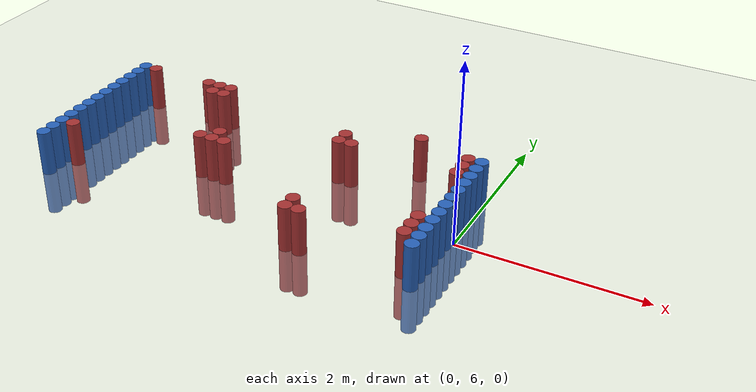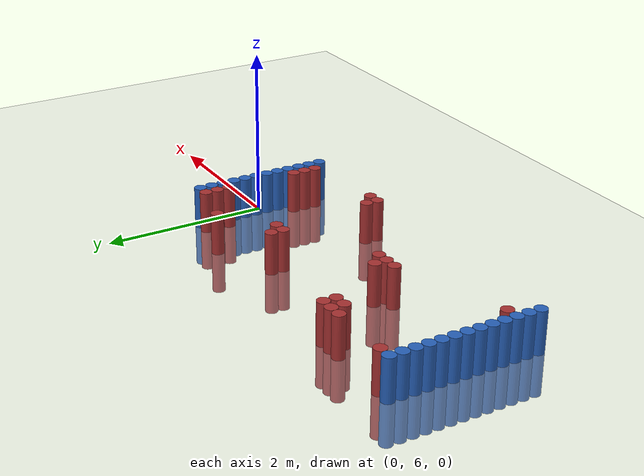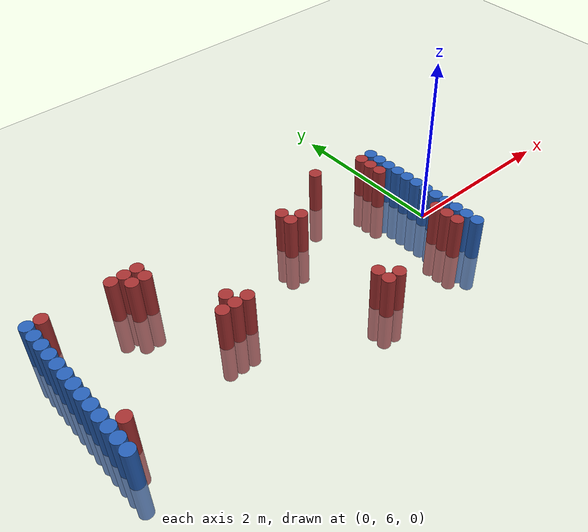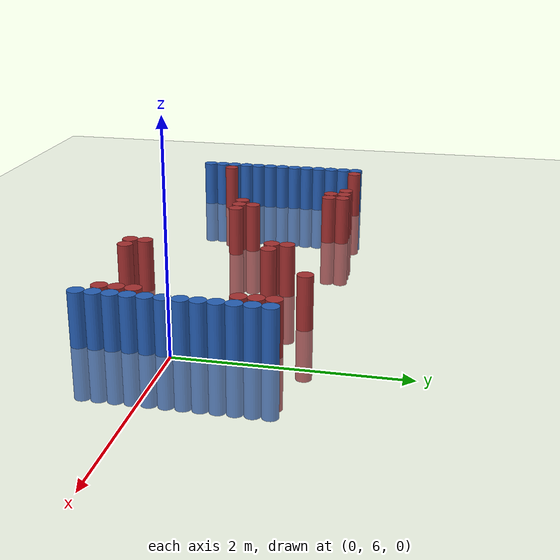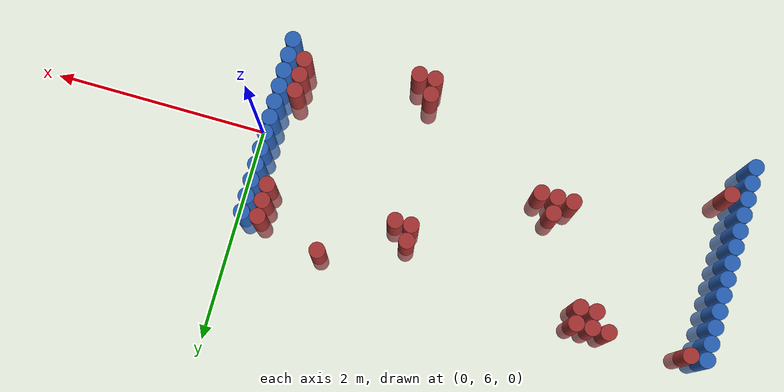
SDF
<sdf version="1.6">
 <world name="default">
  <model name="ground_plane">
   <static>1</static>
   <link name="link">
    <collision name="collision">
     <geometry><plane><normal>0 0 1</normal><size>100 100</size></plane></geometry>
     <surface><friction><ode><mu>100</mu><mu2>50</mu2></ode></friction></surface>
    </collision>
    <visual name="visual">
     <cast_shadows>0</cast_shadows>
     <geometry><plane><normal>0 0 1</normal><size>100 100</size></plane></geometry>
     <material>
      <script><uri>file://media/materials/scripts/gazebo.material</uri><name>Gazebo/Grey</name></script>
     </material>
    </visual>
   </link>
  </model>
  <model name="unit_cylinder_96">
   <static>1</static>
   <pose>-4.425000 5.175000 0.000000 0.000000 0.000000 0.000000</pose>
   <link name="link">
    <inertial>
     <mass>1</mass>
     <inertia><ixx>0.145833</ixx><ixy>0</ixy><ixz>0</ixz><iyy>0.145833</iyy><iyz>0</iyz><izz>0.125</izz></inertia>
    </inertial>
    <collision name="collision">
     <geometry><cylinder><radius>0.075000</radius><length>1</length></cylinder></geometry>
    </collision>
    <visual name="visual">
     <geometry><cylinder><radius>0.075000</radius><length>1</length></cylinder></geometry>
     <material>
      <ambient>0.152000 0.379000 0.720000 1</ambient>
      <diffuse>0.152000 0.379000 0.720000 1</diffuse>
     </material>
     <material>
      <script><name>Gazebo/Grey</name><uri>file://media/materials/scripts/gazebo.material</uri></script>
     </material>
    </visual>
   </link>
  </model>
  <model name="unit_cylinder_97">
   <static>1</static>
   <pose>-4.425000 5.325000 0.000000 0.000000 0.000000 0.000000</pose>
   <link name="link">
    <inertial>
     <mass>1</mass>
     <inertia><ixx>0.145833</ixx><ixy>0</ixy><ixz>0</ixz><iyy>0.145833</iyy><iyz>0</iyz><izz>0.125</izz></inertia>
    </inertial>
    <collision name="collision">
     <geometry><cylinder><radius>0.075000</radius><length>1</length></cylinder></geometry>
    </collision>
    <visual name="visual">
     <geometry><cylinder><radius>0.075000</radius><length>1</length></cylinder></geometry>
     <material>
      <ambient>0.152000 0.379000 0.720000 1</ambient>
      <diffuse>0.152000 0.379000 0.720000 1</diffuse>
     </material>
     <material>
      <script><name>Gazebo/Grey</name><uri>file://media/materials/scripts/gazebo.material</uri></script>
     </material>
    </visual>
   </link>
  </model>
  <model name="unit_cylinder_98">
   <static>1</static>
   <pose>-4.425000 5.475000 0.000000 0.000000 0.000000 0.000000</pose>
   <link name="link">
    <inertial>
     <mass>1</mass>
     <inertia><ixx>0.145833</ixx><ixy>0</ixy><ixz>0</ixz><iyy>0.145833</iyy><iyz>0</iyz><izz>0.125</izz></inertia>
    </inertial>
    <collision name="collision">
     <geometry><cylinder><radius>0.075000</radius><length>1</length></cylinder></geometry>
    </collision>
    <visual name="visual">
     <geometry><cylinder><radius>0.075000</radius><length>1</length></cylinder></geometry>
     <material>
      <ambient>0.152000 0.379000 0.720000 1</ambient>
      <diffuse>0.152000 0.379000 0.720000 1</diffuse>
     </material>
     <material>
      <script><name>Gazebo/Grey</name><uri>file://media/materials/scripts/gazebo.material</uri></script>
     </material>
    </visual>
   </link>
  </model>
  <model name="unit_cylinder_99">
   <static>1</static>
   <pose>-4.425000 5.625000 0.000000 0.000000 0.000000 0.000000</pose>
   <link name="link">
    <inertial>
     <mass>1</mass>
     <inertia><ixx>0.145833</ixx><ixy>0</ixy><ixz>0</ixz><iyy>0.145833</iyy><iyz>0</iyz><izz>0.125</izz></inertia>
    </inertial>
    <collision name="collision">
     <geometry><cylinder><radius>0.075000</radius><length>1</length></cylinder></geometry>
    </collision>
    <visual name="visual">
     <geometry><cylinder><radius>0.075000</radius><length>1</length></cylinder></geometry>
     <material>
      <ambient>0.152000 0.379000 0.720000 1</ambient>
      <diffuse>0.152000 0.379000 0.720000 1</diffuse>
     </material>
     <material>
      <script><name>Gazebo/Grey</name><uri>file://media/materials/scripts/gazebo.material</uri></script>
     </material>
    </visual>
   </link>
  </model>
  <model name="unit_cylinder_100">
   <static>1</static>
   <pose>-4.425000 5.775000 0.000000 0.000000 0.000000 0.000000</pose>
   <link name="link">
    <inertial>
     <mass>1</mass>
     <inertia><ixx>0.145833</ixx><ixy>0</ixy><ixz>0</ixz><iyy>0.145833</iyy><iyz>0</iyz><izz>0.125</izz></inertia>
    </inertial>
    <collision name="collision">
     <geometry><cylinder><radius>0.075000</radius><length>1</length></cylinder></geometry>
    </collision>
    <visual name="visual">
     <geometry><cylinder><radius>0.075000</radius><length>1</length></cylinder></geometry>
     <material>
      <ambient>0.152000 0.379000 0.720000 1</ambient>
      <diffuse>0.152000 0.379000 0.720000 1</diffuse>
     </material>
     <material>
      <script><name>Gazebo/Grey</name><uri>file://media/materials/scripts/gazebo.material</uri></script>
     </material>
    </visual>
   </link>
  </model>
  <model name="unit_cylinder_101">
   <static>1</static>
   <pose>-4.425000 5.925000 0.000000 0.000000 0.000000 0.000000</pose>
   <link name="link">
    <inertial>
     <mass>1</mass>
     <inertia><ixx>0.145833</ixx><ixy>0</ixy><ixz>0</ixz><iyy>0.145833</iyy><iyz>0</iyz><izz>0.125</izz></inertia>
    </inertial>
    <collision name="collision">
     <geometry><cylinder><radius>0.075000</radius><length>1</length></cylinder></geometry>
    </collision>
    <visual name="visual">
     <geometry><cylinder><radius>0.075000</radius><length>1</length></cylinder></geometry>
     <material>
      <ambient>0.152000 0.379000 0.720000 1</ambient>
      <diffuse>0.152000 0.379000 0.720000 1</diffuse>
     </material>
     <material>
      <script><name>Gazebo/Grey</name><uri>file://media/materials/scripts/gazebo.material</uri></script>
     </material>
    </visual>
   </link>
  </model>
  <model name="unit_cylinder_102">
   <static>1</static>
   <pose>-4.425000 6.075000 0.000000 0.000000 0.000000 0.000000</pose>
   <link name="link">
    <inertial>
     <mass>1</mass>
     <inertia><ixx>0.145833</ixx><ixy>0</ixy><ixz>0</ixz><iyy>0.145833</iyy><iyz>0</iyz><izz>0.125</izz></inertia>
    </inertial>
    <collision name="collision">
     <geometry><cylinder><radius>0.075000</radius><length>1</length></cylinder></geometry>
    </collision>
    <visual name="visual">
     <geometry><cylinder><radius>0.075000</radius><length>1</length></cylinder></geometry>
     <material>
      <ambient>0.152000 0.379000 0.720000 1</ambient>
      <diffuse>0.152000 0.379000 0.720000 1</diffuse>
     </material>
     <material>
      <script><name>Gazebo/Grey</name><uri>file://media/materials/scripts/gazebo.material</uri></script>
     </material>
    </visual>
   </link>
  </model>
  <model name="unit_cylinder_103">
   <static>1</static>
   <pose>-4.425000 6.225000 0.000000 0.000000 0.000000 0.000000</pose>
   <link name="link">
    <inertial>
     <mass>1</mass>
     <inertia><ixx>0.145833</ixx><ixy>0</ixy><ixz>0</ixz><iyy>0.145833</iyy><iyz>0</iyz><izz>0.125</izz></inertia>
    </inertial>
    <collision name="collision">
     <geometry><cylinder><radius>0.075000</radius><length>1</length></cylinder></geometry>
    </collision>
    <visual name="visual">
     <geometry><cylinder><radius>0.075000</radius><length>1</length></cylinder></geometry>
     <material>
      <ambient>0.152000 0.379000 0.720000 1</ambient>
      <diffuse>0.152000 0.379000 0.720000 1</diffuse>
     </material>
     <material>
      <script><name>Gazebo/Grey</name><uri>file://media/materials/scripts/gazebo.material</uri></script>
     </material>
    </visual>
   </link>
  </model>
  <model name="unit_cylinder_104">
   <static>1</static>
   <pose>-4.425000 6.375000 0.000000 0.000000 0.000000 0.000000</pose>
   <link name="link">
    <inertial>
     <mass>1</mass>
     <inertia><ixx>0.145833</ixx><ixy>0</ixy><ixz>0</ixz><iyy>0.145833</iyy><iyz>0</iyz><izz>0.125</izz></inertia>
    </inertial>
    <collision name="collision">
     <geometry><cylinder><radius>0.075000</radius><length>1</length></cylinder></geometry>
    </collision>
    <visual name="visual">
     <geometry><cylinder><radius>0.075000</radius><length>1</length></cylinder></geometry>
     <material>
      <ambient>0.152000 0.379000 0.720000 1</ambient>
      <diffuse>0.152000 0.379000 0.720000 1</diffuse>
     </material>
     <material>
      <script><name>Gazebo/Grey</name><uri>file://media/materials/scripts/gazebo.material</uri></script>
     </material>
    </visual>
   </link>
  </model>
  <model name="unit_cylinder_105">
   <static>1</static>
   <pose>-4.425000 6.525000 0.000000 0.000000 0.000000 0.000000</pose>
   <link name="link">
    <inertial>
     <mass>1</mass>
     <inertia><ixx>0.145833</ixx><ixy>0</ixy><ixz>0</ixz><iyy>0.145833</iyy><iyz>0</iyz><izz>0.125</izz></inertia>
    </inertial>
    <collision name="collision">
     <geometry><cylinder><radius>0.075000</radius><length>1</length></cylinder></geometry>
    </collision>
    <visual name="visual">
     <geometry><cylinder><radius>0.075000</radius><length>1</length></cylinder></geometry>
     <material>
      <ambient>0.152000 0.379000 0.720000 1</ambient>
      <diffuse>0.152000 0.379000 0.720000 1</diffuse>
     </material>
     <material>
      <script><name>Gazebo/Grey</name><uri>file://media/materials/scripts/gazebo.material</uri></script>
     </material>
    </visual>
   </link>
  </model>
  <model name="unit_cylinder_106">
   <static>1</static>
   <pose>-4.425000 6.675000 0.000000 0.000000 0.000000 0.000000</pose>
   <link name="link">
    <inertial>
     <mass>1</mass>
     <inertia><ixx>0.145833</ixx><ixy>0</ixy><ixz>0</ixz><iyy>0.145833</iyy><iyz>0</iyz><izz>0.125</izz></inertia>
    </inertial>
    <collision name="collision">
     <geometry><cylinder><radius>0.075000</radius><length>1</length></cylinder></geometry>
    </collision>
    <visual name="visual">
     <geometry><cylinder><radius>0.075000</radius><length>1</length></cylinder></geometry>
     <material>
      <ambient>0.152000 0.379000 0.720000 1</ambient>
      <diffuse>0.152000 0.379000 0.720000 1</diffuse>
     </material>
     <material>
      <script><name>Gazebo/Grey</name><uri>file://media/materials/scripts/gazebo.material</uri></script>
     </material>
    </visual>
   </link>
  </model>
  <model name="unit_cylinder_107">
   <static>1</static>
   <pose>-4.425000 6.825000 0.000000 0.000000 0.000000 0.000000</pose>
   <link name="link">
    <inertial>
     <mass>1</mass>
     <inertia><ixx>0.145833</ixx><ixy>0</ixy><ixz>0</ixz><iyy>0.145833</iyy><iyz>0</iyz><izz>0.125</izz></inertia>
    </inertial>
    <collision name="collision">
     <geometry><cylinder><radius>0.075000</radius><length>1</length></cylinder></geometry>
    </collision>
    <visual name="visual">
     <geometry><cylinder><radius>0.075000</radius><length>1</length></cylinder></geometry>
     <material>
      <ambient>0.152000 0.379000 0.720000 1</ambient>
      <diffuse>0.152000 0.379000 0.720000 1</diffuse>
     </material>
     <material>
      <script><name>Gazebo/Grey</name><uri>file://media/materials/scripts/gazebo.material</uri></script>
     </material>
    </visual>
   </link>
  </model>
  <model name="unit_cylinder_108">
   <static>1</static>
   <pose>-4.425000 6.975000 0.000000 0.000000 0.000000 0.000000</pose>
   <link name="link">
    <inertial>
     <mass>1</mass>
     <inertia><ixx>0.145833</ixx><ixy>0</ixy><ixz>0</ixz><iyy>0.145833</iyy><iyz>0</iyz><izz>0.125</izz></inertia>
    </inertial>
    <collision name="collision">
     <geometry><cylinder><radius>0.075000</radius><length>1</length></cylinder></geometry>
    </collision>
    <visual name="visual">
     <geometry><cylinder><radius>0.075000</radius><length>1</length></cylinder></geometry>
     <material>
      <ambient>0.152000 0.379000 0.720000 1</ambient>
      <diffuse>0.152000 0.379000 0.720000 1</diffuse>
     </material>
     <material>
      <script><name>Gazebo/Grey</name><uri>file://media/materials/scripts/gazebo.material</uri></script>
     </material>
    </visual>
   </link>
  </model>
  <model name="unit_cylinder_126">
   <static>1</static>
   <pose>-4.275000 5.475000 0.000000 0.000000 0.000000 0.000000</pose>
   <link name="link">
    <inertial>
     <mass>1</mass>
     <inertia><ixx>0.145833</ixx><ixy>0</ixy><ixz>0</ixz><iyy>0.145833</iyy><iyz>0</iyz><izz>0.125</izz></inertia>
    </inertial>
    <collision name="collision">
     <geometry><cylinder><radius>0.075000</radius><length>1</length></cylinder></geometry>
    </collision>
    <visual name="visual">
     <geometry><cylinder><radius>0.075000</radius><length>1</length></cylinder></geometry>
     <material>
      <ambient>0.648000 0.192000 0.192000 1</ambient>
      <diffuse>0.648000 0.192000 0.192000 1</diffuse>
     </material>
     <material>
      <script><name>Gazebo/Grey</name><uri>file://media/materials/scripts/gazebo.material</uri></script>
     </material>
    </visual>
   </link>
  </model>
  <model name="unit_cylinder_127">
   <static>1</static>
   <pose>-4.275000 6.975000 0.000000 0.000000 0.000000 0.000000</pose>
   <link name="link">
    <inertial>
     <mass>1</mass>
     <inertia><ixx>0.145833</ixx><ixy>0</ixy><ixz>0</ixz><iyy>0.145833</iyy><iyz>0</iyz><izz>0.125</izz></inertia>
    </inertial>
    <collision name="collision">
     <geometry><cylinder><radius>0.075000</radius><length>1</length></cylinder></geometry>
    </collision>
    <visual name="visual">
     <geometry><cylinder><radius>0.075000</radius><length>1</length></cylinder></geometry>
     <material>
      <ambient>0.648000 0.192000 0.192000 1</ambient>
      <diffuse>0.648000 0.192000 0.192000 1</diffuse>
     </material>
     <material>
      <script><name>Gazebo/Grey</name><uri>file://media/materials/scripts/gazebo.material</uri></script>
     </material>
    </visual>
   </link>
  </model>
  <model name="unit_cylinder_147">
   <static>1</static>
   <pose>-3.525000 6.975000 0.000000 0.000000 0.000000 0.000000</pose>
   <link name="link">
    <inertial>
     <mass>1</mass>
     <inertia><ixx>0.145833</ixx><ixy>0</ixy><ixz>0</ixz><iyy>0.145833</iyy><iyz>0</iyz><izz>0.125</izz></inertia>
    </inertial>
    <collision name="collision">
     <geometry><cylinder><radius>0.075000</radius><length>1</length></cylinder></geometry>
    </collision>
    <visual name="visual">
     <geometry><cylinder><radius>0.075000</radius><length>1</length></cylinder></geometry>
     <material>
      <ambient>0.648000 0.192000 0.192000 1</ambient>
      <diffuse>0.648000 0.192000 0.192000 1</diffuse>
     </material>
     <material>
      <script><name>Gazebo/Grey</name><uri>file://media/materials/scripts/gazebo.material</uri></script>
     </material>
    </visual>
   </link>
  </model>
  <model name="unit_cylinder_149">
   <static>1</static>
   <pose>-3.375000 6.825000 0.000000 0.000000 0.000000 0.000000</pose>
   <link name="link">
    <inertial>
     <mass>1</mass>
     <inertia><ixx>0.145833</ixx><ixy>0</ixy><ixz>0</ixz><iyy>0.145833</iyy><iyz>0</iyz><izz>0.125</izz></inertia>
    </inertial>
    <collision name="collision">
     <geometry><cylinder><radius>0.075000</radius><length>1</length></cylinder></geometry>
    </collision>
    <visual name="visual">
     <geometry><cylinder><radius>0.075000</radius><length>1</length></cylinder></geometry>
     <material>
      <ambient>0.648000 0.192000 0.192000 1</ambient>
      <diffuse>0.648000 0.192000 0.192000 1</diffuse>
     </material>
     <material>
      <script><name>Gazebo/Grey</name><uri>file://media/materials/scripts/gazebo.material</uri></script>
     </material>
    </visual>
   </link>
  </model>
  <model name="unit_cylinder_150">
   <static>1</static>
   <pose>-3.375000 6.975000 0.000000 0.000000 0.000000 0.000000</pose>
   <link name="link">
    <inertial>
     <mass>1</mass>
     <inertia><ixx>0.145833</ixx><ixy>0</ixy><ixz>0</ixz><iyy>0.145833</iyy><iyz>0</iyz><izz>0.125</izz></inertia>
    </inertial>
    <collision name="collision">
     <geometry><cylinder><radius>0.075000</radius><length>1</length></cylinder></geometry>
    </collision>
    <visual name="visual">
     <geometry><cylinder><radius>0.075000</radius><length>1</length></cylinder></geometry>
     <material>
      <ambient>0.648000 0.192000 0.192000 1</ambient>
      <diffuse>0.648000 0.192000 0.192000 1</diffuse>
     </material>
     <material>
      <script><name>Gazebo/Grey</name><uri>file://media/materials/scripts/gazebo.material</uri></script>
     </material>
    </visual>
   </link>
  </model>
  <model name="unit_cylinder_152">
   <static>1</static>
   <pose>-3.225000 6.825000 0.000000 0.000000 0.000000 0.000000</pose>
   <link name="link">
    <inertial>
     <mass>1</mass>
     <inertia><ixx>0.145833</ixx><ixy>0</ixy><ixz>0</ixz><iyy>0.145833</iyy><iyz>0</iyz><izz>0.125</izz></inertia>
    </inertial>
    <collision name="collision">
     <geometry><cylinder><radius>0.075000</radius><length>1</length></cylinder></geometry>
    </collision>
    <visual name="visual">
     <geometry><cylinder><radius>0.075000</radius><length>1</length></cylinder></geometry>
     <material>
      <ambient>0.648000 0.192000 0.192000 1</ambient>
      <diffuse>0.648000 0.192000 0.192000 1</diffuse>
     </material>
     <material>
      <script><name>Gazebo/Grey</name><uri>file://media/materials/scripts/gazebo.material</uri></script>
     </material>
    </visual>
   </link>
  </model>
  <model name="unit_cylinder_153">
   <static>1</static>
   <pose>-3.225000 6.975000 0.000000 0.000000 0.000000 0.000000</pose>
   <link name="link">
    <inertial>
     <mass>1</mass>
     <inertia><ixx>0.145833</ixx><ixy>0</ixy><ixz>0</ixz><iyy>0.145833</iyy><iyz>0</iyz><izz>0.125</izz></inertia>
    </inertial>
    <collision name="collision">
     <geometry><cylinder><radius>0.075000</radius><length>1</length></cylinder></geometry>
    </collision>
    <visual name="visual">
     <geometry><cylinder><radius>0.075000</radius><length>1</length></cylinder></geometry>
     <material>
      <ambient>0.648000 0.192000 0.192000 1</ambient>
      <diffuse>0.648000 0.192000 0.192000 1</diffuse>
     </material>
     <material>
      <script><name>Gazebo/Grey</name><uri>file://media/materials/scripts/gazebo.material</uri></script>
     </material>
    </visual>
   </link>
  </model>
  <model name="unit_cylinder_157">
   <static>1</static>
   <pose>-2.925000 5.925000 0.000000 0.000000 0.000000 0.000000</pose>
   <link name="link">
    <inertial>
     <mass>1</mass>
     <inertia><ixx>0.145833</ixx><ixy>0</ixy><ixz>0</ixz><iyy>0.145833</iyy><iyz>0</iyz><izz>0.125</izz></inertia>
    </inertial>
    <collision name="collision">
     <geometry><cylinder><radius>0.075000</radius><length>1</length></cylinder></geometry>
    </collision>
    <visual name="visual">
     <geometry><cylinder><radius>0.075000</radius><length>1</length></cylinder></geometry>
     <material>
      <ambient>0.648000 0.192000 0.192000 1</ambient>
      <diffuse>0.648000 0.192000 0.192000 1</diffuse>
     </material>
     <material>
      <script><name>Gazebo/Grey</name><uri>file://media/materials/scripts/gazebo.material</uri></script>
     </material>
    </visual>
   </link>
  </model>
  <model name="unit_cylinder_158">
   <static>1</static>
   <pose>-2.775000 5.925000 0.000000 0.000000 0.000000 0.000000</pose>
   <link name="link">
    <inertial>
     <mass>1</mass>
     <inertia><ixx>0.145833</ixx><ixy>0</ixy><ixz>0</ixz><iyy>0.145833</iyy><iyz>0</iyz><izz>0.125</izz></inertia>
    </inertial>
    <collision name="collision">
     <geometry><cylinder><radius>0.075000</radius><length>1</length></cylinder></geometry>
    </collision>
    <visual name="visual">
     <geometry><cylinder><radius>0.075000</radius><length>1</length></cylinder></geometry>
     <material>
      <ambient>0.648000 0.192000 0.192000 1</ambient>
      <diffuse>0.648000 0.192000 0.192000 1</diffuse>
     </material>
     <material>
      <script><name>Gazebo/Grey</name><uri>file://media/materials/scripts/gazebo.material</uri></script>
     </material>
    </visual>
   </link>
  </model>
  <model name="unit_cylinder_159">
   <static>1</static>
   <pose>-2.775000 6.075000 0.000000 0.000000 0.000000 0.000000</pose>
   <link name="link">
    <inertial>
     <mass>1</mass>
     <inertia><ixx>0.145833</ixx><ixy>0</ixy><ixz>0</ixz><iyy>0.145833</iyy><iyz>0</iyz><izz>0.125</izz></inertia>
    </inertial>
    <collision name="collision">
     <geometry><cylinder><radius>0.075000</radius><length>1</length></cylinder></geometry>
    </collision>
    <visual name="visual">
     <geometry><cylinder><radius>0.075000</radius><length>1</length></cylinder></geometry>
     <material>
      <ambient>0.648000 0.192000 0.192000 1</ambient>
      <diffuse>0.648000 0.192000 0.192000 1</diffuse>
     </material>
     <material>
      <script><name>Gazebo/Grey</name><uri>file://media/materials/scripts/gazebo.material</uri></script>
     </material>
    </visual>
   </link>
  </model>
  <model name="unit_cylinder_160">
   <static>1</static>
   <pose>-2.625000 5.925000 0.000000 0.000000 0.000000 0.000000</pose>
   <link name="link">
    <inertial>
     <mass>1</mass>
     <inertia><ixx>0.145833</ixx><ixy>0</ixy><ixz>0</ixz><iyy>0.145833</iyy><iyz>0</iyz><izz>0.125</izz></inertia>
    </inertial>
    <collision name="collision">
     <geometry><cylinder><radius>0.075000</radius><length>1</length></cylinder></geometry>
    </collision>
    <visual name="visual">
     <geometry><cylinder><radius>0.075000</radius><length>1</length></cylinder></geometry>
     <material>
      <ambient>0.648000 0.192000 0.192000 1</ambient>
      <diffuse>0.648000 0.192000 0.192000 1</diffuse>
     </material>
     <material>
      <script><name>Gazebo/Grey</name><uri>file://media/materials/scripts/gazebo.material</uri></script>
     </material>
    </visual>
   </link>
  </model>
  <model name="unit_cylinder_165">
   <static>1</static>
   <pose>-1.575000 6.525000 0.000000 0.000000 0.000000 0.000000</pose>
   <link name="link">
    <inertial>
     <mass>1</mass>
     <inertia><ixx>0.145833</ixx><ixy>0</ixy><ixz>0</ixz><iyy>0.145833</iyy><iyz>0</iyz><izz>0.125</izz></inertia>
    </inertial>
    <collision name="collision">
     <geometry><cylinder><radius>0.075000</radius><length>1</length></cylinder></geometry>
    </collision>
    <visual name="visual">
     <geometry><cylinder><radius>0.075000</radius><length>1</length></cylinder></geometry>
     <material>
      <ambient>0.648000 0.192000 0.192000 1</ambient>
      <diffuse>0.648000 0.192000 0.192000 1</diffuse>
     </material>
     <material>
      <script><name>Gazebo/Grey</name><uri>file://media/materials/scripts/gazebo.material</uri></script>
     </material>
    </visual>
   </link>
  </model>
  <model name="unit_cylinder_166">
   <static>1</static>
   <pose>-1.575000 6.675000 0.000000 0.000000 0.000000 0.000000</pose>
   <link name="link">
    <inertial>
     <mass>1</mass>
     <inertia><ixx>0.145833</ixx><ixy>0</ixy><ixz>0</ixz><iyy>0.145833</iyy><iyz>0</iyz><izz>0.125</izz></inertia>
    </inertial>
    <collision name="collision">
     <geometry><cylinder><radius>0.075000</radius><length>1</length></cylinder></geometry>
    </collision>
    <visual name="visual">
     <geometry><cylinder><radius>0.075000</radius><length>1</length></cylinder></geometry>
     <material>
      <ambient>0.648000 0.192000 0.192000 1</ambient>
      <diffuse>0.648000 0.192000 0.192000 1</diffuse>
     </material>
     <material>
      <script><name>Gazebo/Grey</name><uri>file://media/materials/scripts/gazebo.material</uri></script>
     </material>
    </visual>
   </link>
  </model>
  <model name="unit_cylinder_171">
   <static>1</static>
   <pose>-1.425000 5.175000 0.000000 0.000000 0.000000 0.000000</pose>
   <link name="link">
    <inertial>
     <mass>1</mass>
     <inertia><ixx>0.145833</ixx><ixy>0</ixy><ixz>0</ixz><iyy>0.145833</iyy><iyz>0</iyz><izz>0.125</izz></inertia>
    </inertial>
    <collision name="collision">
     <geometry><cylinder><radius>0.075000</radius><length>1</length></cylinder></geometry>
    </collision>
    <visual name="visual">
     <geometry><cylinder><radius>0.075000</radius><length>1</length></cylinder></geometry>
     <material>
      <ambient>0.648000 0.192000 0.192000 1</ambient>
      <diffuse>0.648000 0.192000 0.192000 1</diffuse>
     </material>
     <material>
      <script><name>Gazebo/Grey</name><uri>file://media/materials/scripts/gazebo.material</uri></script>
     </material>
    </visual>
   </link>
  </model>
  <model name="unit_cylinder_172">
   <static>1</static>
   <pose>-1.425000 5.325000 0.000000 0.000000 0.000000 0.000000</pose>
   <link name="link">
    <inertial>
     <mass>1</mass>
     <inertia><ixx>0.145833</ixx><ixy>0</ixy><ixz>0</ixz><iyy>0.145833</iyy><iyz>0</iyz><izz>0.125</izz></inertia>
    </inertial>
    <collision name="collision">
     <geometry><cylinder><radius>0.075000</radius><length>1</length></cylinder></geometry>
    </collision>
    <visual name="visual">
     <geometry><cylinder><radius>0.075000</radius><length>1</length></cylinder></geometry>
     <material>
      <ambient>0.648000 0.192000 0.192000 1</ambient>
      <diffuse>0.648000 0.192000 0.192000 1</diffuse>
     </material>
     <material>
      <script><name>Gazebo/Grey</name><uri>file://media/materials/scripts/gazebo.material</uri></script>
     </material>
    </visual>
   </link>
  </model>
  <model name="unit_cylinder_173">
   <static>1</static>
   <pose>-1.425000 6.525000 0.000000 0.000000 0.000000 0.000000</pose>
   <link name="link">
    <inertial>
     <mass>1</mass>
     <inertia><ixx>0.145833</ixx><ixy>0</ixy><ixz>0</ixz><iyy>0.145833</iyy><iyz>0</iyz><izz>0.125</izz></inertia>
    </inertial>
    <collision name="collision">
     <geometry><cylinder><radius>0.075000</radius><length>1</length></cylinder></geometry>
    </collision>
    <visual name="visual">
     <geometry><cylinder><radius>0.075000</radius><length>1</length></cylinder></geometry>
     <material>
      <ambient>0.648000 0.192000 0.192000 1</ambient>
      <diffuse>0.648000 0.192000 0.192000 1</diffuse>
     </material>
     <material>
      <script><name>Gazebo/Grey</name><uri>file://media/materials/scripts/gazebo.material</uri></script>
     </material>
    </visual>
   </link>
  </model>
  <model name="unit_cylinder_179">
   <static>1</static>
   <pose>-1.275000 5.175000 0.000000 0.000000 0.000000 0.000000</pose>
   <link name="link">
    <inertial>
     <mass>1</mass>
     <inertia><ixx>0.145833</ixx><ixy>0</ixy><ixz>0</ixz><iyy>0.145833</iyy><iyz>0</iyz><izz>0.125</izz></inertia>
    </inertial>
    <collision name="collision">
     <geometry><cylinder><radius>0.075000</radius><length>1</length></cylinder></geometry>
    </collision>
    <visual name="visual">
     <geometry><cylinder><radius>0.075000</radius><length>1</length></cylinder></geometry>
     <material>
      <ambient>0.648000 0.192000 0.192000 1</ambient>
      <diffuse>0.648000 0.192000 0.192000 1</diffuse>
     </material>
     <material>
      <script><name>Gazebo/Grey</name><uri>file://media/materials/scripts/gazebo.material</uri></script>
     </material>
    </visual>
   </link>
  </model>
  <model name="unit_cylinder_187">
   <static>1</static>
   <pose>-0.825000 6.975000 0.000000 0.000000 0.000000 0.000000</pose>
   <link name="link">
    <inertial>
     <mass>1</mass>
     <inertia><ixx>0.145833</ixx><ixy>0</ixy><ixz>0</ixz><iyy>0.145833</iyy><iyz>0</iyz><izz>0.125</izz></inertia>
    </inertial>
    <collision name="collision">
     <geometry><cylinder><radius>0.075000</radius><length>1</length></cylinder></geometry>
    </collision>
    <visual name="visual">
     <geometry><cylinder><radius>0.075000</radius><length>1</length></cylinder></geometry>
     <material>
      <ambient>0.648000 0.192000 0.192000 1</ambient>
      <diffuse>0.648000 0.192000 0.192000 1</diffuse>
     </material>
     <material>
      <script><name>Gazebo/Grey</name><uri>file://media/materials/scripts/gazebo.material</uri></script>
     </material>
    </visual>
   </link>
  </model>
  <model name="unit_cylinder_202">
   <static>1</static>
   <pose>-0.225000 5.325000 0.000000 0.000000 0.000000 0.000000</pose>
   <link name="link">
    <inertial>
     <mass>1</mass>
     <inertia><ixx>0.145833</ixx><ixy>0</ixy><ixz>0</ixz><iyy>0.145833</iyy><iyz>0</iyz><izz>0.125</izz></inertia>
    </inertial>
    <collision name="collision">
     <geometry><cylinder><radius>0.075000</radius><length>1</length></cylinder></geometry>
    </collision>
    <visual name="visual">
     <geometry><cylinder><radius>0.075000</radius><length>1</length></cylinder></geometry>
     <material>
      <ambient>0.648000 0.192000 0.192000 1</ambient>
      <diffuse>0.648000 0.192000 0.192000 1</diffuse>
     </material>
     <material>
      <script><name>Gazebo/Grey</name><uri>file://media/materials/scripts/gazebo.material</uri></script>
     </material>
    </visual>
   </link>
  </model>
  <model name="unit_cylinder_203">
   <static>1</static>
   <pose>-0.225000 5.475000 0.000000 0.000000 0.000000 0.000000</pose>
   <link name="link">
    <inertial>
     <mass>1</mass>
     <inertia><ixx>0.145833</ixx><ixy>0</ixy><ixz>0</ixz><iyy>0.145833</iyy><iyz>0</iyz><izz>0.125</izz></inertia>
    </inertial>
    <collision name="collision">
     <geometry><cylinder><radius>0.075000</radius><length>1</length></cylinder></geometry>
    </collision>
    <visual name="visual">
     <geometry><cylinder><radius>0.075000</radius><length>1</length></cylinder></geometry>
     <material>
      <ambient>0.648000 0.192000 0.192000 1</ambient>
      <diffuse>0.648000 0.192000 0.192000 1</diffuse>
     </material>
     <material>
      <script><name>Gazebo/Grey</name><uri>file://media/materials/scripts/gazebo.material</uri></script>
     </material>
    </visual>
   </link>
  </model>
  <model name="unit_cylinder_204">
   <static>1</static>
   <pose>-0.225000 5.625000 0.000000 0.000000 0.000000 0.000000</pose>
   <link name="link">
    <inertial>
     <mass>1</mass>
     <inertia><ixx>0.145833</ixx><ixy>0</ixy><ixz>0</ixz><iyy>0.145833</iyy><iyz>0</iyz><izz>0.125</izz></inertia>
    </inertial>
    <collision name="collision">
     <geometry><cylinder><radius>0.075000</radius><length>1</length></cylinder></geometry>
    </collision>
    <visual name="visual">
     <geometry><cylinder><radius>0.075000</radius><length>1</length></cylinder></geometry>
     <material>
      <ambient>0.648000 0.192000 0.192000 1</ambient>
      <diffuse>0.648000 0.192000 0.192000 1</diffuse>
     </material>
     <material>
      <script><name>Gazebo/Grey</name><uri>file://media/materials/scripts/gazebo.material</uri></script>
     </material>
    </visual>
   </link>
  </model>
  <model name="unit_cylinder_205">
   <static>1</static>
   <pose>-0.225000 6.525000 0.000000 0.000000 0.000000 0.000000</pose>
   <link name="link">
    <inertial>
     <mass>1</mass>
     <inertia><ixx>0.145833</ixx><ixy>0</ixy><ixz>0</ixz><iyy>0.145833</iyy><iyz>0</iyz><izz>0.125</izz></inertia>
    </inertial>
    <collision name="collision">
     <geometry><cylinder><radius>0.075000</radius><length>1</length></cylinder></geometry>
    </collision>
    <visual name="visual">
     <geometry><cylinder><radius>0.075000</radius><length>1</length></cylinder></geometry>
     <material>
      <ambient>0.648000 0.192000 0.192000 1</ambient>
      <diffuse>0.648000 0.192000 0.192000 1</diffuse>
     </material>
     <material>
      <script><name>Gazebo/Grey</name><uri>file://media/materials/scripts/gazebo.material</uri></script>
     </material>
    </visual>
   </link>
  </model>
  <model name="unit_cylinder_206">
   <static>1</static>
   <pose>-0.225000 6.675000 0.000000 0.000000 0.000000 0.000000</pose>
   <link name="link">
    <inertial>
     <mass>1</mass>
     <inertia><ixx>0.145833</ixx><ixy>0</ixy><ixz>0</ixz><iyy>0.145833</iyy><iyz>0</iyz><izz>0.125</izz></inertia>
    </inertial>
    <collision name="collision">
     <geometry><cylinder><radius>0.075000</radius><length>1</length></cylinder></geometry>
    </collision>
    <visual name="visual">
     <geometry><cylinder><radius>0.075000</radius><length>1</length></cylinder></geometry>
     <material>
      <ambient>0.648000 0.192000 0.192000 1</ambient>
      <diffuse>0.648000 0.192000 0.192000 1</diffuse>
     </material>
     <material>
      <script><name>Gazebo/Grey</name><uri>file://media/materials/scripts/gazebo.material</uri></script>
     </material>
    </visual>
   </link>
  </model>
  <model name="unit_cylinder_207">
   <static>1</static>
   <pose>-0.225000 6.825000 0.000000 0.000000 0.000000 0.000000</pose>
   <link name="link">
    <inertial>
     <mass>1</mass>
     <inertia><ixx>0.145833</ixx><ixy>0</ixy><ixz>0</ixz><iyy>0.145833</iyy><iyz>0</iyz><izz>0.125</izz></inertia>
    </inertial>
    <collision name="collision">
     <geometry><cylinder><radius>0.075000</radius><length>1</length></cylinder></geometry>
    </collision>
    <visual name="visual">
     <geometry><cylinder><radius>0.075000</radius><length>1</length></cylinder></geometry>
     <material>
      <ambient>0.648000 0.192000 0.192000 1</ambient>
      <diffuse>0.648000 0.192000 0.192000 1</diffuse>
     </material>
     <material>
      <script><name>Gazebo/Grey</name><uri>file://media/materials/scripts/gazebo.material</uri></script>
     </material>
    </visual>
   </link>
  </model>
  <model name="unit_cylinder_212">
   <static>1</static>
   <pose>-0.075000 5.175000 0.000000 0.000000 0.000000 0.000000</pose>
   <link name="link">
    <inertial>
     <mass>1</mass>
     <inertia><ixx>0.145833</ixx><ixy>0</ixy><ixz>0</ixz><iyy>0.145833</iyy><iyz>0</iyz><izz>0.125</izz></inertia>
    </inertial>
    <collision name="collision">
     <geometry><cylinder><radius>0.075000</radius><length>1</length></cylinder></geometry>
    </collision>
    <visual name="visual">
     <geometry><cylinder><radius>0.075000</radius><length>1</length></cylinder></geometry>
     <material>
      <ambient>0.152000 0.379000 0.720000 1</ambient>
      <diffuse>0.152000 0.379000 0.720000 1</diffuse>
     </material>
     <material>
      <script><name>Gazebo/Grey</name><uri>file://media/materials/scripts/gazebo.material</uri></script>
     </material>
    </visual>
   </link>
  </model>
  <model name="unit_cylinder_213">
   <static>1</static>
   <pose>-0.075000 5.325000 0.000000 0.000000 0.000000 0.000000</pose>
   <link name="link">
    <inertial>
     <mass>1</mass>
     <inertia><ixx>0.145833</ixx><ixy>0</ixy><ixz>0</ixz><iyy>0.145833</iyy><iyz>0</iyz><izz>0.125</izz></inertia>
    </inertial>
    <collision name="collision">
     <geometry><cylinder><radius>0.075000</radius><length>1</length></cylinder></geometry>
    </collision>
    <visual name="visual">
     <geometry><cylinder><radius>0.075000</radius><length>1</length></cylinder></geometry>
     <material>
      <ambient>0.152000 0.379000 0.720000 1</ambient>
      <diffuse>0.152000 0.379000 0.720000 1</diffuse>
     </material>
     <material>
      <script><name>Gazebo/Grey</name><uri>file://media/materials/scripts/gazebo.material</uri></script>
     </material>
    </visual>
   </link>
  </model>
  <model name="unit_cylinder_214">
   <static>1</static>
   <pose>-0.075000 5.475000 0.000000 0.000000 0.000000 0.000000</pose>
   <link name="link">
    <inertial>
     <mass>1</mass>
     <inertia><ixx>0.145833</ixx><ixy>0</ixy><ixz>0</ixz><iyy>0.145833</iyy><iyz>0</iyz><izz>0.125</izz></inertia>
    </inertial>
    <collision name="collision">
     <geometry><cylinder><radius>0.075000</radius><length>1</length></cylinder></geometry>
    </collision>
    <visual name="visual">
     <geometry><cylinder><radius>0.075000</radius><length>1</length></cylinder></geometry>
     <material>
      <ambient>0.152000 0.379000 0.720000 1</ambient>
      <diffuse>0.152000 0.379000 0.720000 1</diffuse>
     </material>
     <material>
      <script><name>Gazebo/Grey</name><uri>file://media/materials/scripts/gazebo.material</uri></script>
     </material>
    </visual>
   </link>
  </model>
  <model name="unit_cylinder_215">
   <static>1</static>
   <pose>-0.075000 5.625000 0.000000 0.000000 0.000000 0.000000</pose>
   <link name="link">
    <inertial>
     <mass>1</mass>
     <inertia><ixx>0.145833</ixx><ixy>0</ixy><ixz>0</ixz><iyy>0.145833</iyy><iyz>0</iyz><izz>0.125</izz></inertia>
    </inertial>
    <collision name="collision">
     <geometry><cylinder><radius>0.075000</radius><length>1</length></cylinder></geometry>
    </collision>
    <visual name="visual">
     <geometry><cylinder><radius>0.075000</radius><length>1</length></cylinder></geometry>
     <material>
      <ambient>0.152000 0.379000 0.720000 1</ambient>
      <diffuse>0.152000 0.379000 0.720000 1</diffuse>
     </material>
     <material>
      <script><name>Gazebo/Grey</name><uri>file://media/materials/scripts/gazebo.material</uri></script>
     </material>
    </visual>
   </link>
  </model>
  <model name="unit_cylinder_216">
   <static>1</static>
   <pose>-0.075000 5.775000 0.000000 0.000000 0.000000 0.000000</pose>
   <link name="link">
    <inertial>
     <mass>1</mass>
     <inertia><ixx>0.145833</ixx><ixy>0</ixy><ixz>0</ixz><iyy>0.145833</iyy><iyz>0</iyz><izz>0.125</izz></inertia>
    </inertial>
    <collision name="collision">
     <geometry><cylinder><radius>0.075000</radius><length>1</length></cylinder></geometry>
    </collision>
    <visual name="visual">
     <geometry><cylinder><radius>0.075000</radius><length>1</length></cylinder></geometry>
     <material>
      <ambient>0.152000 0.379000 0.720000 1</ambient>
      <diffuse>0.152000 0.379000 0.720000 1</diffuse>
     </material>
     <material>
      <script><name>Gazebo/Grey</name><uri>file://media/materials/scripts/gazebo.material</uri></script>
     </material>
    </visual>
   </link>
  </model>
  <model name="unit_cylinder_217">
   <static>1</static>
   <pose>-0.075000 5.925000 0.000000 0.000000 0.000000 0.000000</pose>
   <link name="link">
    <inertial>
     <mass>1</mass>
     <inertia><ixx>0.145833</ixx><ixy>0</ixy><ixz>0</ixz><iyy>0.145833</iyy><iyz>0</iyz><izz>0.125</izz></inertia>
    </inertial>
    <collision name="collision">
     <geometry><cylinder><radius>0.075000</radius><length>1</length></cylinder></geometry>
    </collision>
    <visual name="visual">
     <geometry><cylinder><radius>0.075000</radius><length>1</length></cylinder></geometry>
     <material>
      <ambient>0.152000 0.379000 0.720000 1</ambient>
      <diffuse>0.152000 0.379000 0.720000 1</diffuse>
     </material>
     <material>
      <script><name>Gazebo/Grey</name><uri>file://media/materials/scripts/gazebo.material</uri></script>
     </material>
    </visual>
   </link>
  </model>
  <model name="unit_cylinder_218">
   <static>1</static>
   <pose>-0.075000 6.075000 0.000000 0.000000 0.000000 0.000000</pose>
   <link name="link">
    <inertial>
     <mass>1</mass>
     <inertia><ixx>0.145833</ixx><ixy>0</ixy><ixz>0</ixz><iyy>0.145833</iyy><iyz>0</iyz><izz>0.125</izz></inertia>
    </inertial>
    <collision name="collision">
     <geometry><cylinder><radius>0.075000</radius><length>1</length></cylinder></geometry>
    </collision>
    <visual name="visual">
     <geometry><cylinder><radius>0.075000</radius><length>1</length></cylinder></geometry>
     <material>
      <ambient>0.152000 0.379000 0.720000 1</ambient>
      <diffuse>0.152000 0.379000 0.720000 1</diffuse>
     </material>
     <material>
      <script><name>Gazebo/Grey</name><uri>file://media/materials/scripts/gazebo.material</uri></script>
     </material>
    </visual>
   </link>
  </model>
  <model name="unit_cylinder_219">
   <static>1</static>
   <pose>-0.075000 6.225000 0.000000 0.000000 0.000000 0.000000</pose>
   <link name="link">
    <inertial>
     <mass>1</mass>
     <inertia><ixx>0.145833</ixx><ixy>0</ixy><ixz>0</ixz><iyy>0.145833</iyy><iyz>0</iyz><izz>0.125</izz></inertia>
    </inertial>
    <collision name="collision">
     <geometry><cylinder><radius>0.075000</radius><length>1</length></cylinder></geometry>
    </collision>
    <visual name="visual">
     <geometry><cylinder><radius>0.075000</radius><length>1</length></cylinder></geometry>
     <material>
      <ambient>0.152000 0.379000 0.720000 1</ambient>
      <diffuse>0.152000 0.379000 0.720000 1</diffuse>
     </material>
     <material>
      <script><name>Gazebo/Grey</name><uri>file://media/materials/scripts/gazebo.material</uri></script>
     </material>
    </visual>
   </link>
  </model>
  <model name="unit_cylinder_220">
   <static>1</static>
   <pose>-0.075000 6.375000 0.000000 0.000000 0.000000 0.000000</pose>
   <link name="link">
    <inertial>
     <mass>1</mass>
     <inertia><ixx>0.145833</ixx><ixy>0</ixy><ixz>0</ixz><iyy>0.145833</iyy><iyz>0</iyz><izz>0.125</izz></inertia>
    </inertial>
    <collision name="collision">
     <geometry><cylinder><radius>0.075000</radius><length>1</length></cylinder></geometry>
    </collision>
    <visual name="visual">
     <geometry><cylinder><radius>0.075000</radius><length>1</length></cylinder></geometry>
     <material>
      <ambient>0.152000 0.379000 0.720000 1</ambient>
      <diffuse>0.152000 0.379000 0.720000 1</diffuse>
     </material>
     <material>
      <script><name>Gazebo/Grey</name><uri>file://media/materials/scripts/gazebo.material</uri></script>
     </material>
    </visual>
   </link>
  </model>
  <model name="unit_cylinder_221">
   <static>1</static>
   <pose>-0.075000 6.525000 0.000000 0.000000 0.000000 0.000000</pose>
   <link name="link">
    <inertial>
     <mass>1</mass>
     <inertia><ixx>0.145833</ixx><ixy>0</ixy><ixz>0</ixz><iyy>0.145833</iyy><iyz>0</iyz><izz>0.125</izz></inertia>
    </inertial>
    <collision name="collision">
     <geometry><cylinder><radius>0.075000</radius><length>1</length></cylinder></geometry>
    </collision>
    <visual name="visual">
     <geometry><cylinder><radius>0.075000</radius><length>1</length></cylinder></geometry>
     <material>
      <ambient>0.152000 0.379000 0.720000 1</ambient>
      <diffuse>0.152000 0.379000 0.720000 1</diffuse>
     </material>
     <material>
      <script><name>Gazebo/Grey</name><uri>file://media/materials/scripts/gazebo.material</uri></script>
     </material>
    </visual>
   </link>
  </model>
  <model name="unit_cylinder_222">
   <static>1</static>
   <pose>-0.075000 6.675000 0.000000 0.000000 0.000000 0.000000</pose>
   <link name="link">
    <inertial>
     <mass>1</mass>
     <inertia><ixx>0.145833</ixx><ixy>0</ixy><ixz>0</ixz><iyy>0.145833</iyy><iyz>0</iyz><izz>0.125</izz></inertia>
    </inertial>
    <collision name="collision">
     <geometry><cylinder><radius>0.075000</radius><length>1</length></cylinder></geometry>
    </collision>
    <visual name="visual">
     <geometry><cylinder><radius>0.075000</radius><length>1</length></cylinder></geometry>
     <material>
      <ambient>0.152000 0.379000 0.720000 1</ambient>
      <diffuse>0.152000 0.379000 0.720000 1</diffuse>
     </material>
     <material>
      <script><name>Gazebo/Grey</name><uri>file://media/materials/scripts/gazebo.material</uri></script>
     </material>
    </visual>
   </link>
  </model>
  <model name="unit_cylinder_223">
   <static>1</static>
   <pose>-0.075000 6.825000 0.000000 0.000000 0.000000 0.000000</pose>
   <link name="link">
    <inertial>
     <mass>1</mass>
     <inertia><ixx>0.145833</ixx><ixy>0</ixy><ixz>0</ixz><iyy>0.145833</iyy><iyz>0</iyz><izz>0.125</izz></inertia>
    </inertial>
    <collision name="collision">
     <geometry><cylinder><radius>0.075000</radius><length>1</length></cylinder></geometry>
    </collision>
    <visual name="visual">
     <geometry><cylinder><radius>0.075000</radius><length>1</length></cylinder></geometry>
     <material>
      <ambient>0.152000 0.379000 0.720000 1</ambient>
      <diffuse>0.152000 0.379000 0.720000 1</diffuse>
     </material>
     <material>
      <script><name>Gazebo/Grey</name><uri>file://media/materials/scripts/gazebo.material</uri></script>
     </material>
    </visual>
   </link>
  </model>
 </world>
</sdf>
